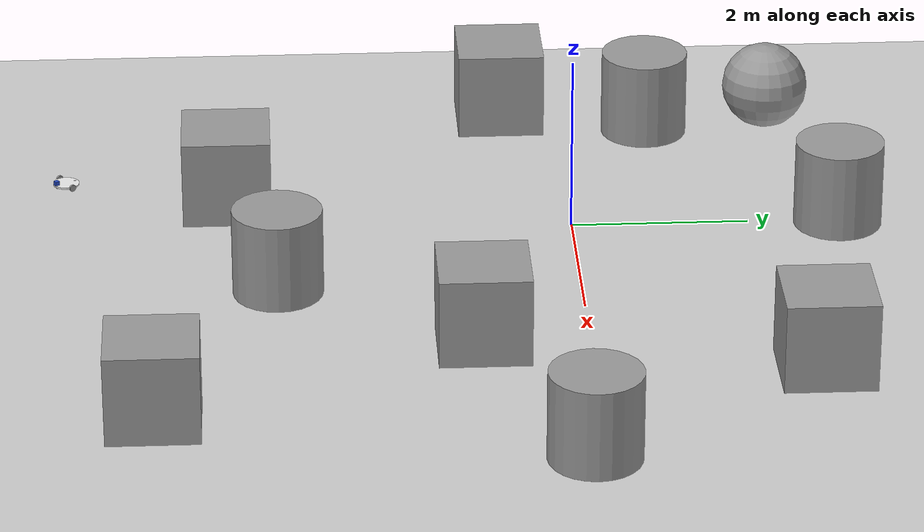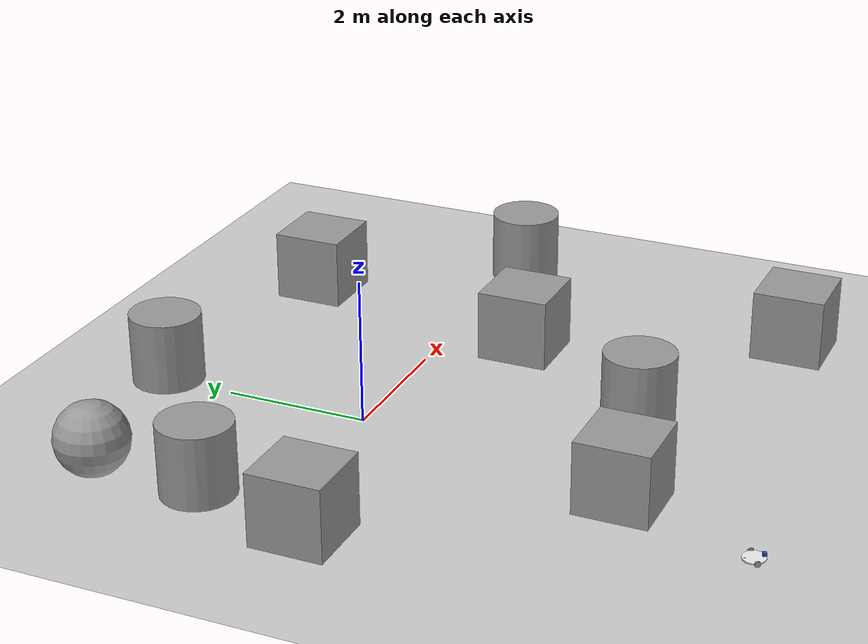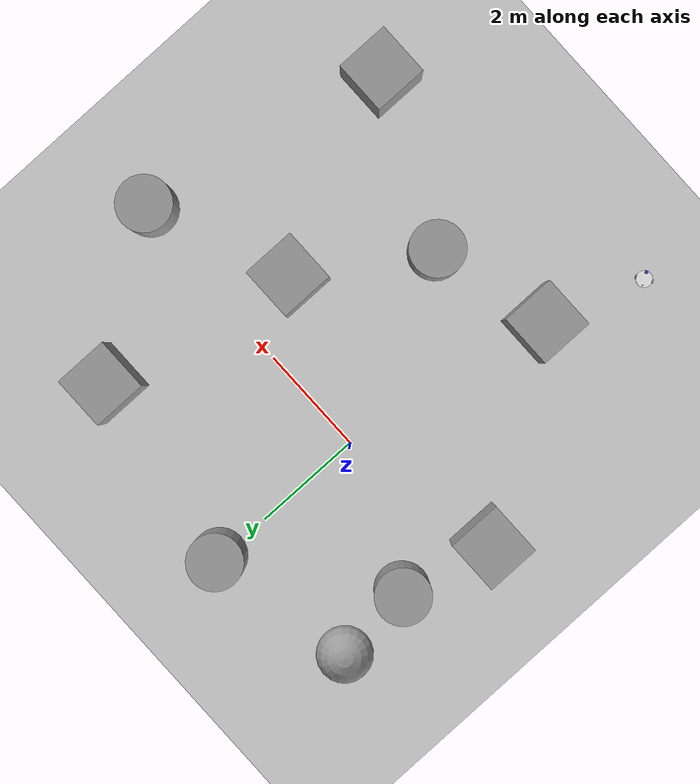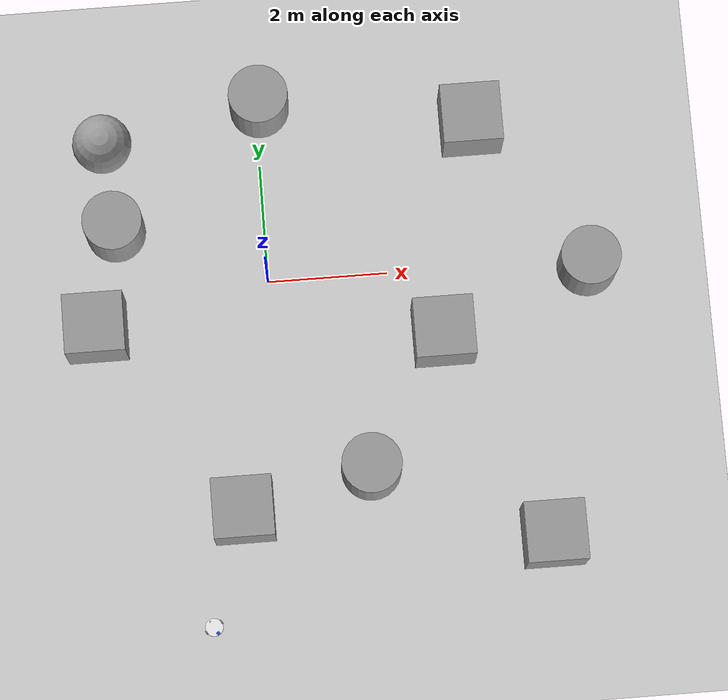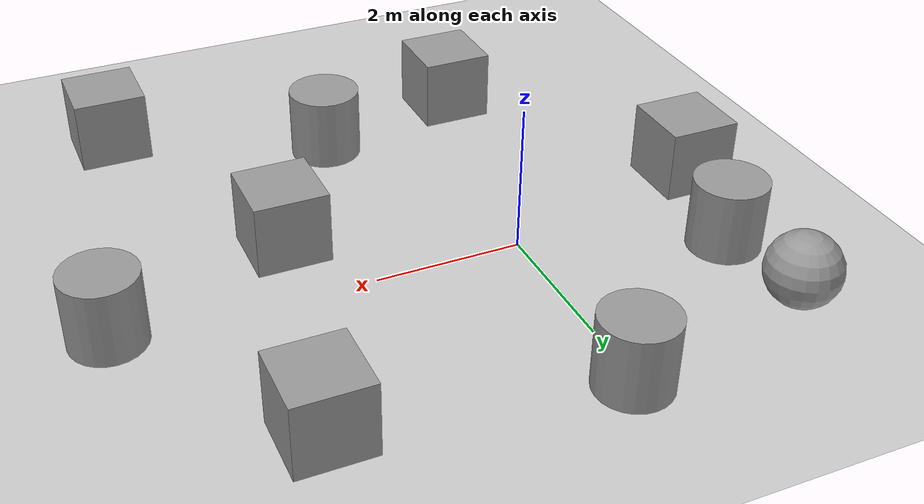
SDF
<sdf version="1.7">
 <world name="default">
  <light name="sun" type="directional">
   <pose>0 0 10 0 -0 0</pose>
   <diffuse>0.8 0.8 0.8 1</diffuse>
   <specular>0.2 0.2 0.2 1</specular>
   <attenuation>
    <range>1000</range>
    <constant>0.9</constant>
    <linear>0.01</linear>
    <quadratic>0.001</quadratic>
   </attenuation>
   <direction>-0.5 0.1 -0.9</direction>
   <spot><inner_angle>0</inner_angle><outer_angle>0</outer_angle><falloff>0</falloff></spot>
  </light>
  <model name="ground_plane">
   <static>1</static>
   <link name="link">
    <collision name="collision">
     <geometry><plane><normal>0 0 1</normal><size>100 100</size></plane></geometry>
     <surface>
      <contact><collide_bitmask>65535</collide_bitmask></contact>
      <friction><ode><mu>100</mu><mu2>50</mu2></ode></friction>
     </surface>
    </collision>
    <visual name="visual">
     <cast_shadows>0</cast_shadows>
     <geometry><plane><normal>0 0 1</normal><size>100 100</size></plane></geometry>
     <material>
      <script><uri>file://media/materials/scripts/gazebo.material</uri><name>Gazebo/Grey</name></script>
     </material>
    </visual>
   </link>
  </model>
  <gravity>0 0 -9.8</gravity>
  <magnetic_field>6e-06 2.3e-05 -4.2e-05</magnetic_field>
  <atmosphere type="adiabatic"/>
  <physics type="ode">
   <max_step_size>0.001</max_step_size>
   <real_time_factor>1</real_time_factor>
   <real_time_update_rate>1000</real_time_update_rate>
  </physics>
  <scene><ambient>0.4 0.4 0.4 1</ambient><background>0.7 0.7 0.7 1</background><shadows>1</shadows></scene>
  <spherical_coordinates>
   <surface_model>EARTH_WGS84</surface_model>
   <latitude_deg>0</latitude_deg>
   <longitude_deg>0</longitude_deg>
   <elevation>0</elevation>
   <heading_deg>0</heading_deg>
  </spherical_coordinates>
  <model name="diff_wheeled_robot">
   <link name="base_footprint">
    <inertial>
     <pose>-0.001667 0 0.041333 0 -0 0</pose>
     <mass>6.0001</mass>
     <inertia>
      <ixx>0.0022545</ixx>
      <ixy>0</ixy>
      <ixz>0.000191674</ixz>
      <iyy>0.0179628</iyy>
      <iyz>0</iyz>
      <izz>0.0179083</izz>
     </inertia>
    </inertial>
    <collision name="base_footprint_fixed_joint_lump__base_link_collision">
     <pose>0 0 0.04 0 -0 0</pose>
     <geometry><cylinder><length>0.02</length><radius>0.15</radius></cylinder></geometry>
    </collision>
    <collision name="base_footprint_fixed_joint_lump__caster_back_link_collision_1">
     <pose>-0.135 0 0.029 0 -0 0</pose>
     <geometry><sphere><radius>0.025</radius></sphere></geometry>
    </collision>
    <collision name="base_footprint_fixed_joint_lump__caster_front_link_collision_2">
     <pose>0.115 0 0.027 0 -0 0</pose>
     <geometry><sphere><radius>0.025</radius></sphere></geometry>
    </collision>
    <visual name="base_footprint_visual"><geometry><box><size>0.001 0.001 0.001</size></box></geometry></visual>
    <visual name="base_footprint_fixed_joint_lump__base_link_visual_1">
     <pose>0 0 0.04 0 -0 0</pose>
     <geometry><cylinder><length>0.02</length><radius>0.15</radius></cylinder></geometry>
     <material>
      <script><name>Gazebo/White</name><uri>file://media/materials/scripts/gazebo.material</uri></script>
     </material>
    </visual>
    <visual name="base_footprint_fixed_joint_lump__caster_back_link_visual_2">
     <pose>-0.115 0 0.029 0 -0 0</pose>
     <geometry><sphere><radius>0.025</radius></sphere></geometry>
    </visual>
    <visual name="base_footprint_fixed_joint_lump__caster_front_link_visual_3">
     <pose>0.115 0 0.027 0 -0 0</pose>
     <geometry><sphere><radius>0.025</radius></sphere></geometry>
    </visual>
    <visual name="base_footprint_fixed_joint_lump__laser_link_visual_4">
     <pose>0.125 0 0.0725 0 -0 0</pose>
     <geometry><box><size>0.05 0.05 0.05</size></box></geometry>
     <material>
      <script><name>Gazebo/Blue</name><uri>file://media/materials/scripts/gazebo.material</uri></script>
     </material>
    </visual>
    <sensor name="head_hokuyo_sensor" type="ray">
     <visualize>1</visualize>
     <update_rate>40</update_rate>
     <ray>
      <scan>
       <horizontal>
        <samples>720</samples>
        <resolution>1</resolution>
        <min_angle>-1.5708</min_angle>
        <max_angle>1.5708</max_angle>
       </horizontal>
       <vertical><samples>1</samples><min_angle>0</min_angle><max_angle>0</max_angle></vertical>
      </scan>
      <range><min>0.1</min><max>10</max><resolution>0.001</resolution></range>
     </ray>
     <plugin name="gazebo_ros_head_hokuyo_controller" filename="libgazebo_ros_laser.so">
      <topicName>/scan</topicName>
      <frameName>laser_link</frameName>
      <robotNamespace>/</robotNamespace>
     </plugin>
     <pose>0.125 0 0.0725 0 -0 0</pose>
    </sensor>
   </link>
   <joint name="front_left_wheel_joint" type="revolute">
    <pose relative_to="base_footprint">0 0.15 0.04 0 -0 0</pose>
    <parent>base_footprint</parent>
    <child>front_left_wheel</child>
    <axis>
     <xyz>0 1 0</xyz>
     <limit><effort>100</effort><velocity>100</velocity><lower>-1e+16</lower><upper>1e+16</upper></limit>
     <dynamics><spring_reference>0</spring_reference><spring_stiffness>0</spring_stiffness></dynamics>
    </axis>
   </joint>
   <link name="front_left_wheel">
    <pose relative_to="front_left_wheel_joint">0 0 0 0 -0 0</pose>
    <inertial>
     <mass>2.5</mass>
     <inertia><ixx>0.001</ixx><ixy>0</ixy><ixz>0</ixz><iyy>0.001</iyy><iyz>0</iyz><izz>0.001</izz></inertia>
    </inertial>
    <collision name="front_left_wheel_collision">
     <pose>0 0 0 1.5708 -0 0</pose>
     <geometry><cylinder><length>0.02</length><radius>0.04</radius></cylinder></geometry>
     <surface>
      <contact><ode><kp>1e+07</kp><kd>1</kd></ode></contact>
      <friction><ode><mu>1</mu><mu2>1</mu2><fdir1>1 0 0</fdir1></ode></friction>
     </surface>
    </collision>
    <visual name="front_left_wheel_visual">
     <pose>0 0 0 1.5708 -0 0</pose>
     <geometry><cylinder><length>0.02</length><radius>0.04</radius></cylinder></geometry>
     <material>
      <script><name>Gazebo/Grey</name><uri>file://media/materials/scripts/gazebo.material</uri></script>
     </material>
    </visual>
   </link>
   <joint name="front_right_wheel_joint" type="revolute">
    <pose relative_to="base_footprint">0 -0.15 0.04 0 -0 0</pose>
    <parent>base_footprint</parent>
    <child>front_right_wheel</child>
    <axis>
     <xyz>0 1 0</xyz>
     <limit><effort>100</effort><velocity>100</velocity><lower>-1e+16</lower><upper>1e+16</upper></limit>
     <dynamics><spring_reference>0</spring_reference><spring_stiffness>0</spring_stiffness></dynamics>
    </axis>
   </joint>
   <link name="front_right_wheel">
    <pose relative_to="front_right_wheel_joint">0 0 0 0 -0 0</pose>
    <inertial>
     <mass>2.5</mass>
     <inertia><ixx>0.001</ixx><ixy>0</ixy><ixz>0</ixz><iyy>0.001</iyy><iyz>0</iyz><izz>0.001</izz></inertia>
    </inertial>
    <collision name="front_right_wheel_collision">
     <pose>0 0 0 1.5708 -0 0</pose>
     <geometry><cylinder><length>0.02</length><radius>0.04</radius></cylinder></geometry>
     <surface>
      <contact><ode><kp>1e+07</kp><kd>1</kd></ode></contact>
      <friction><ode><mu>1</mu><mu2>1</mu2><fdir1>1 0 0</fdir1></ode></friction>
     </surface>
    </collision>
    <visual name="front_right_wheel_visual">
     <pose>0 0 0 1.5708 -0 0</pose>
     <geometry><cylinder><length>0.02</length><radius>0.04</radius></cylinder></geometry>
     <material>
      <script><name>Gazebo/Grey</name><uri>file://media/materials/scripts/gazebo.material</uri></script>
     </material>
    </visual>
   </link>
   <static>0</static>
   <plugin name="differential_drive_controller" filename="libgazebo_ros_diff_drive.so">
    <legacyMode>1</legacyMode>
    <rosDebugLevel>Debug</rosDebugLevel>
    <publishWheelTF>0</publishWheelTF>
    <robotNamespace>/</robotNamespace>
    <publishTf>1</publishTf>
    <publishWheelJointState>0</publishWheelJointState>
    <alwaysOn>1</alwaysOn>
    <updateRate>100.0</updateRate>
    <leftJoint>front_left_wheel_joint</leftJoint>
    <rightJoint>front_right_wheel_joint</rightJoint>
    <wheelSeparation>0.3</wheelSeparation>
    <wheelDiameter>0.08</wheelDiameter>
    <broadcastTF>1</broadcastTF>
    <wheelTorque>30</wheelTorque>
    <wheelAcceleration>1.8</wheelAcceleration>
    <commandTopic>cmd_vel</commandTopic>
    <odometryFrame>odom</odometryFrame>
    <odometryTopic>odom</odometryTopic>
    <robotBaseFrame>base_footprint</robotBaseFrame>
   </plugin>
   <pose>-1.30711 -5.73985 1.5e-05 1e-06 -0.029649 -1.02513</pose>
  </model>
  <model name="unit_box">
   <pose>2.85254 -1.15785 0.499995 -1e-05 -0 -0</pose>
   <link name="link">
    <inertial>
     <mass>1</mass>
     <inertia>
      <ixx>0.166667</ixx>
      <ixy>0</ixy>
      <ixz>0</ixz>
      <iyy>0.166667</iyy>
      <iyz>0</iyz>
      <izz>0.166667</izz>
     </inertia>
    </inertial>
    <collision name="collision"><geometry><box><size>1 1 1</size></box></geometry></collision>
    <visual name="visual">
     <geometry><box><size>1 1 1</size></box></geometry>
     <material>
      <script><name>Gazebo/Grey</name><uri>file://media/materials/scripts/gazebo.material</uri></script>
     </material>
    </visual>
   </link>
  </model>
  <model name="unit_cylinder">
   <pose>1.47921 -3.33602 0.499992 -3e-06 4e-06 0</pose>
   <link name="link">
    <inertial>
     <mass>1</mass>
     <inertia><ixx>0.145833</ixx><ixy>0</ixy><ixz>0</ixz><iyy>0.145833</iyy><iyz>0</iyz><izz>0.125</izz></inertia>
    </inertial>
    <collision name="collision">
     <geometry><cylinder><radius>0.5</radius><length>1</length></cylinder></geometry>
    </collision>
    <visual name="visual">
     <geometry><cylinder><radius>0.5</radius><length>1</length></cylinder></geometry>
     <material>
      <script><name>Gazebo/Grey</name><uri>file://media/materials/scripts/gazebo.material</uri></script>
     </material>
    </visual>
   </link>
  </model>
  <model name="unit_box_0">
   <pose>-2.91748 -0.652857 0.499995 -1e-05 -0 -0</pose>
   <link name="link">
    <inertial>
     <mass>1</mass>
     <inertia>
      <ixx>0.166667</ixx>
      <ixy>0</ixy>
      <ixz>0</ixz>
      <iyy>0.166667</iyy>
      <iyz>0</iyz>
      <izz>0.166667</izz>
     </inertia>
    </inertial>
    <collision name="collision"><geometry><box><size>1 1 1</size></box></geometry></collision>
    <visual name="visual">
     <geometry><box><size>1 1 1</size></box></geometry>
     <material>
      <script><name>Gazebo/Grey</name><uri>file://media/materials/scripts/gazebo.material</uri></script>
     </material>
    </visual>
   </link>
  </model>
  <model name="unit_sphere">
   <pose>-2.62253 2.479 0.5 0 -0 0</pose>
   <link name="link">
    <inertial>
     <mass>1</mass>
     <inertia><ixx>0.1</ixx><ixy>0</ixy><ixz>0</ixz><iyy>0.1</iyy><iyz>0</iyz><izz>0.1</izz></inertia>
    </inertial>
    <collision name="collision"><geometry><sphere><radius>0.5</radius></sphere></geometry></collision>
    <visual name="visual">
     <geometry><sphere><radius>0.5</radius></sphere></geometry>
     <material>
      <script><name>Gazebo/Grey</name><uri>file://media/materials/scripts/gazebo.material</uri></script>
     </material>
    </visual>
   </link>
  </model>
  <model name="unit_cylinder_0">
   <pose>0.062517 3.01455 0.499998 3e-06 -4e-06 0</pose>
   <link name="link">
    <inertial>
     <mass>1</mass>
     <inertia><ixx>0.145833</ixx><ixy>0</ixy><ixz>0</ixz><iyy>0.145833</iyy><iyz>0</iyz><izz>0.125</izz></inertia>
    </inertial>
    <collision name="collision">
     <geometry><cylinder><radius>0.5</radius><length>1</length></cylinder></geometry>
    </collision>
    <visual name="visual">
     <geometry><cylinder><radius>0.5</radius><length>1</length></cylinder></geometry>
     <material>
      <script><name>Gazebo/Grey</name><uri>file://media/materials/scripts/gazebo.material</uri></script>
     </material>
    </visual>
   </link>
  </model>
  <model name="unit_box_1">
   <pose>3.60269 2.43398 0.499995 0 1e-05 0</pose>
   <link name="link">
    <inertial>
     <mass>1</mass>
     <inertia>
      <ixx>0.166667</ixx>
      <ixy>0</ixy>
      <ixz>0</ixz>
      <iyy>0.166667</iyy>
      <iyz>0</iyz>
      <izz>0.166667</izz>
     </inertia>
    </inertial>
    <collision name="collision"><geometry><box><size>1 1 1</size></box></geometry></collision>
    <visual name="visual">
     <geometry><box><size>1 1 1</size></box></geometry>
     <material>
      <script><name>Gazebo/Grey</name><uri>file://media/materials/scripts/gazebo.material</uri></script>
     </material>
    </visual>
   </link>
  </model>
  <model name="unit_box_2">
   <pose>4.383 -4.66903 0.499995 -1e-05 -0 -0</pose>
   <link name="link">
    <inertial>
     <mass>1</mass>
     <inertia>
      <ixx>0.166667</ixx>
      <ixy>0</ixy>
      <ixz>0</ixz>
      <iyy>0.166667</iyy>
      <iyz>0</iyz>
      <izz>0.166667</izz>
     </inertia>
    </inertial>
    <collision name="collision"><geometry><box><size>1 1 1</size></box></geometry></collision>
    <visual name="visual">
     <geometry><box><size>1 1 1</size></box></geometry>
     <material>
      <script><name>Gazebo/Grey</name><uri>file://media/materials/scripts/gazebo.material</uri></script>
     </material>
    </visual>
   </link>
  </model>
  <model name="unit_cylinder_1">
   <pose>5.37216 -0.154794 0.499997 3e-06 4e-06 -0</pose>
   <link name="link">
    <inertial>
     <mass>1</mass>
     <inertia><ixx>0.145833</ixx><ixy>0</ixy><ixz>0</ixz><iyy>0.145833</iyy><iyz>0</iyz><izz>0.125</izz></inertia>
    </inertial>
    <collision name="collision">
     <geometry><cylinder><radius>0.5</radius><length>1</length></cylinder></geometry>
    </collision>
    <visual name="visual">
     <geometry><cylinder><radius>0.5</radius><length>1</length></cylinder></geometry>
     <material>
      <script><name>Gazebo/Grey</name><uri>file://media/materials/scripts/gazebo.material</uri></script>
     </material>
    </visual>
   </link>
  </model>
  <model name="unit_box_3">
   <pose>-0.677547 -3.88705 0.499995 -1e-05 -0 0</pose>
   <link name="link">
    <inertial>
     <mass>1</mass>
     <inertia>
      <ixx>0.166667</ixx>
      <ixy>0</ixy>
      <ixz>0</ixz>
      <iyy>0.166667</iyy>
      <iyz>0</iyz>
      <izz>0.166667</izz>
     </inertia>
    </inertial>
    <collision name="collision"><geometry><box><size>1 1 1</size></box></geometry></collision>
    <visual name="visual">
     <geometry><box><size>1 1 1</size></box></geometry>
     <material>
      <script><name>Gazebo/Grey</name><uri>file://media/materials/scripts/gazebo.material</uri></script>
     </material>
    </visual>
   </link>
  </model>
  <model name="unit_cylinder_2">
   <pose>-2.5063 1.03588 0.499997 3e-06 4e-06 -0</pose>
   <link name="link">
    <inertial>
     <mass>1</mass>
     <inertia><ixx>0.145833</ixx><ixy>0</ixy><ixz>0</ixz><iyy>0.145833</iyy><iyz>0</iyz><izz>0.125</izz></inertia>
    </inertial>
    <collision name="collision">
     <geometry><cylinder><radius>0.5</radius><length>1</length></cylinder></geometry>
    </collision>
    <visual name="visual">
     <geometry><cylinder><radius>0.5</radius><length>1</length></cylinder></geometry>
     <material>
      <script><name>Gazebo/Grey</name><uri>file://media/materials/scripts/gazebo.material</uri></script>
     </material>
    </visual>
   </link>
  </model>
 </world>
</sdf>
